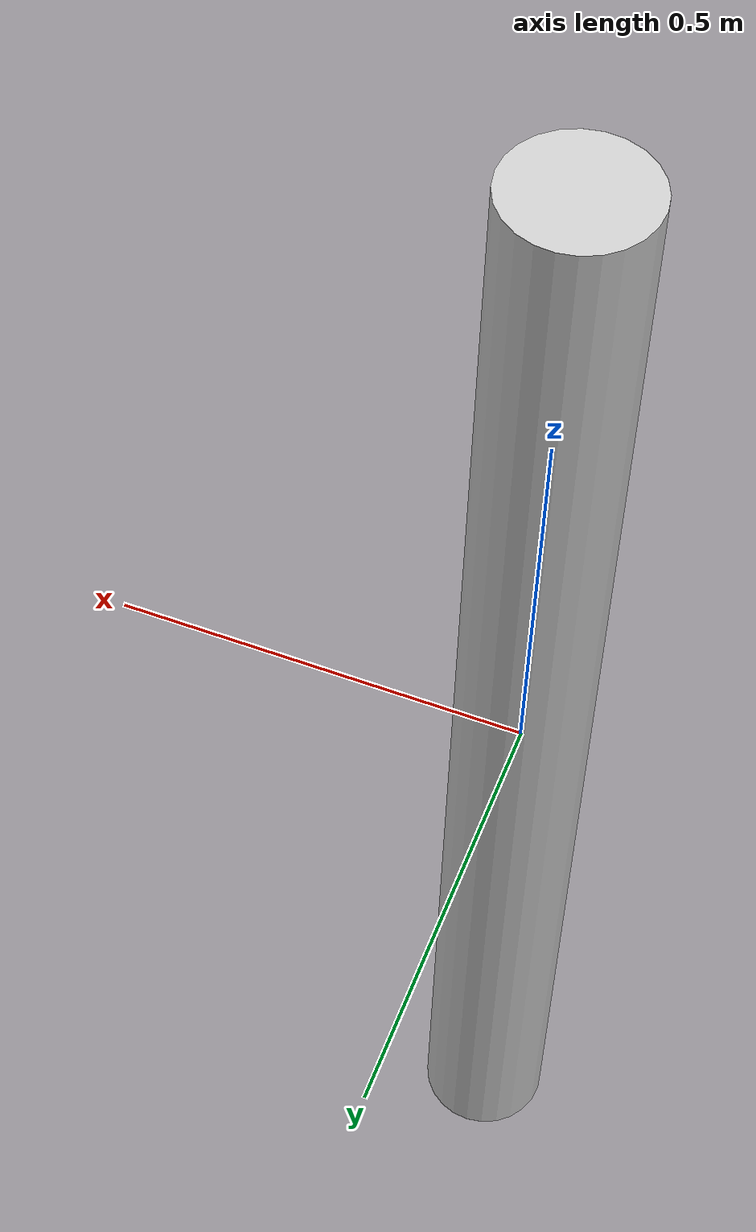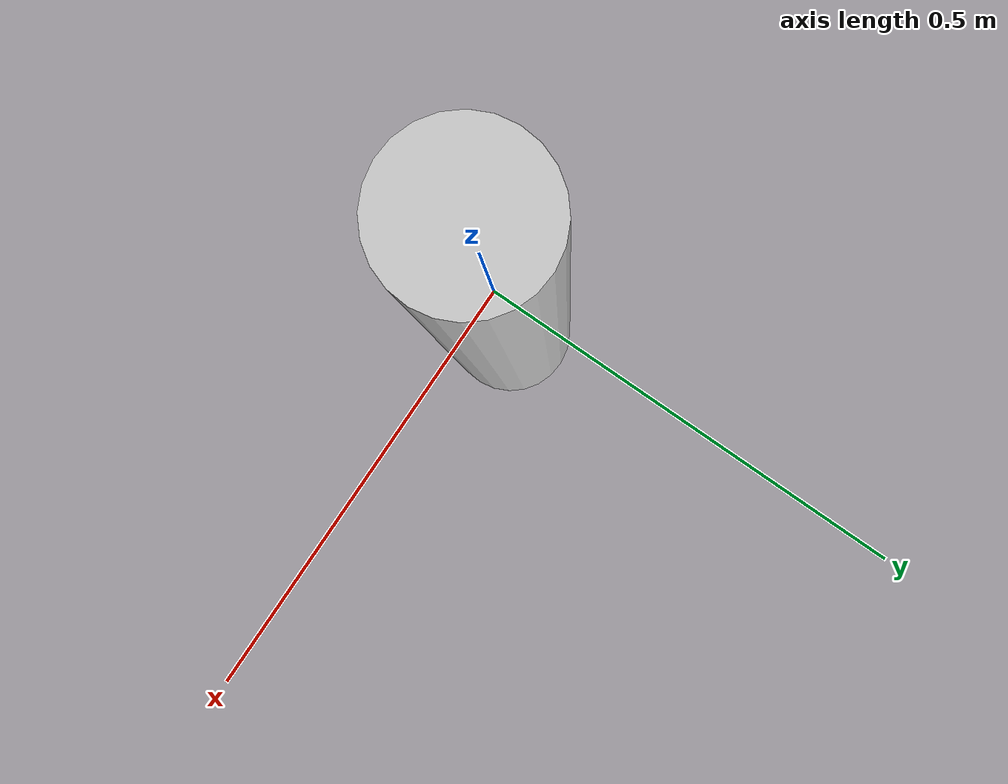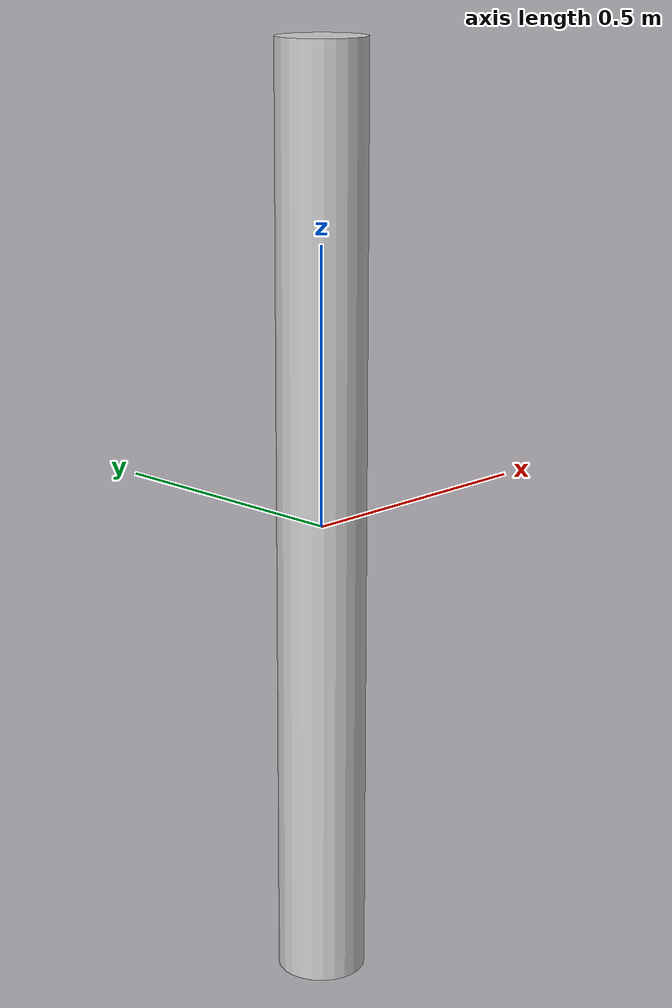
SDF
<?xml version="1.0" ?>
<!--
  Check that model and link poses are being correctly parsed.
  Both red boxes should overlap.
-->
<sdf version="1.6">
  <world name="shapes">
    <physics name="1ms" type="ignored">
      <max_step_size>0.001</max_step_size>
      <real_time_factor>1.0</real_time_factor>
    </physics>
    <plugin
      filename="libignition-gazebo-physics-system.so"
      name="ignition::gazebo::systems::Physics">
    </plugin>
    <plugin
      filename="libignition-gazebo-user-commands-system.so"
      name="ignition::gazebo::systems::UserCommands">
    </plugin>
    <plugin
      filename="libignition-gazebo-scene-broadcaster-system.so"
      name="ignition::gazebo::systems::SceneBroadcaster">
    </plugin>

    <gui fullscreen="0">

      <!-- 3D scene -->
      <plugin filename="GzScene3D" name="3D View">
        <ignition-gui>
          <title>3D View</title>
          <property type="bool" key="showTitleBar">false</property>
          <property type="bool" key="resizable">false</property>
          <property type="double" key="z">0</property>
          <anchor line="right" target="window" target_line="right"/>
          <anchor line="left" target="window" target_line="left"/>
          <anchor line="top" target="window" target_line="top"/>
          <anchor line="bottom" target="window" target_line="bottom"/>
        </ignition-gui>

        <engine>ogre2</engine>
        <scene>scene</scene>
        <ambient_light>0.4 0.4 0.4</ambient_light>
        <background_color>0.8 0.8 0.8</background_color>
        <camera_pose>-6 0 6 0 0.5 0</camera_pose>
      </plugin>

      <!-- World control -->
      <plugin filename="WorldControl" name="World control">
        <ignition-gui>
          <title>World control</title>
          <property type="bool" key="showTitleBar">false</property>
          <property type="bool" key="resizable">false</property>
          <property type="double" key="height">72</property>
          <property type="double" key="width">121</property>
          <property type="double" key="z">1</property>
          <anchor line="left" target="window" target_line="left"/>
          <anchor line="bottom" target="window" target_line="bottom"/>
        </ignition-gui>

        <play_pause>true</play_pause>
        <step>true</step>
        <start_paused>true</start_paused>
        <service>/world/shapes/control</service>
        <stats_topic>/world/shapes/stats</stats_topic>

      </plugin>

      <!-- World statistics -->
      <plugin filename="WorldStats" name="World stats">
        <ignition-gui>
          <title>World stats</title>
          <property type="bool" key="showTitleBar">false</property>
          <property type="bool" key="resizable">false</property>
          <property type="double" key="height">110</property>
          <property type="double" key="width">290</property>
          <property type="double" key="z">1</property>
          <anchor line="right" target="window" target_line="right"/>
          <anchor line="bottom" target="window" target_line="bottom"/>
        </ignition-gui>

        <sim_time>true</sim_time>
        <real_time>true</real_time>
        <real_time_factor>true</real_time_factor>
        <iterations>true</iterations>
        <topic>/world/shapes/stats</topic>

      </plugin>

    </gui>

    <light type="directional" name="sun">
      <cast_shadows>true</cast_shadows>
      <pose>0 0 10 0 0 0</pose>
      <diffuse>0.8 0.8 0.8 1</diffuse>
      <specular>0.2 0.2 0.2 1</specular>
      <attenuation>
        <range>1000</range>
        <constant>0.9</constant>
        <linear>0.01</linear>
        <quadratic>0.001</quadratic>
      </attenuation>
      <direction>-0.5 0.1 -0.9</direction>
    </light>

    <include>
      <static>true</static>
      <name>debug_model</name>
      <pose>0 0 0 0 0 0.57</pose>
      <uri>file:///root/ignition_textures/mossy_bark/</uri>
    </include>

    <!-- Tube Light -->

    <light type="spot" name="tube_light">
      <cast_shadows>false</cast_shadows>
      <pose>3 0 3 0 0.78 0</pose>
      <attenuation>
        <range>50</range>
        <linear>1</linear>
        <constant>0.5</constant>
        <quadratic>0.0055</quadratic>
      </attenuation>
      <diffuse>0.8 0.8 0.8 1</diffuse>
      <specular>0.6 0.6 0.6 1</specular>
      <spot>
        <inner_angle>1</inner_angle>
        <outer_angle>1.1</outer_angle>
        <falloff>1</falloff>
      </spot>
      <direction>1.0 0.0 0.0</direction>
    </light>

  </world>
</sdf>

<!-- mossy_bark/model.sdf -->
<sdf version="1.7">
    <model name="mossy_bark">
      <static>true</static>
      <pose>0 0 3.5 0 0 0</pose>
      <link name="mossy_bark_link">
        <inertial>
          <inertia>
            <ixx>1</ixx>
            <ixy>0</ixy>
            <ixz>0</ixz>
            <iyy>1</iyy>
            <iyz>0</iyz>
            <izz>1</izz>
          </inertia>
          <mass>1.0</mass>
        </inertial>
        <collision name="mossy_barkcollision">
          <geometry>
            <cylinder>
              <radius>0.08</radius>
              <length>1.7</length>
            </cylinder>
          </geometry>
        </collision>
        <visual name="mossy_barkvisual">
          <geometry>
            <cylinder>
              <radius>0.08</radius>
              <length>1.7</length>
            </cylinder>
          </geometry>
          <material>
            <ambient>0.8 0.8 0.8 1</ambient>
            <diffuse>0.8 0.8 0.8 1</diffuse>
            <specular>0.8 0.8 0.8 1</specular>
            <pbr>
              <metal>
                <albedo_map>file:///root/ignition_textures/mossy_bark/materials/textures/Mossy_bark_02_2K_Base_Color.png</albedo_map>
                <normal_map >file:///root/ignition_textures/mossy_bark/materials/textures/Mossy_bark_02_2K_Normal.png</normal_map>
                <ambient_occlusion_map>file:///root/ignition_textures/mossy_bark/materials/textures/Mossy_bark_02_2K_AO.png</ambient_occlusion_map>
                <roughness_map>file:///root/ignition_textures/mossy_bark/materials/textures/Mossy_bark_02_2K_Roughness.png</roughness_map>
                <roughness>0.9</roughness>
                <metalness_map>file:///root/ignition_textures/mossy_bark/materials/textures/Mossy_bark_02_2K_Height.png</metalness_map>
                <metalness>0.9</metalness>
              </metal>
            </pbr>
            <!-- fallback to classic if no PBR support-->
            <script>
              <uri>file:///root/ignition_textures/mossy_bark/materials/scripts</uri>
              <uri>file:///root/ignition_textures/mossy_bark/materials/textures</uri>
              <name>MossyBark/Diffuse</name>
            </script>
          </material>
        </visual>
      </link>
    </model>
</sdf>
